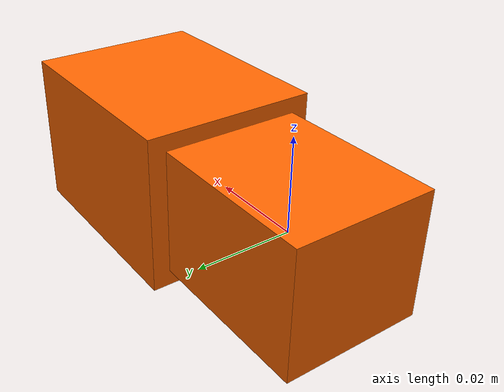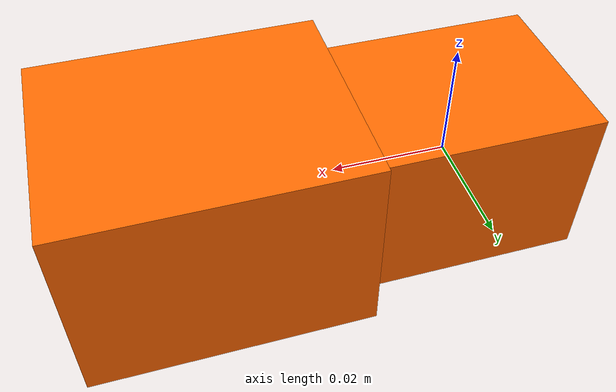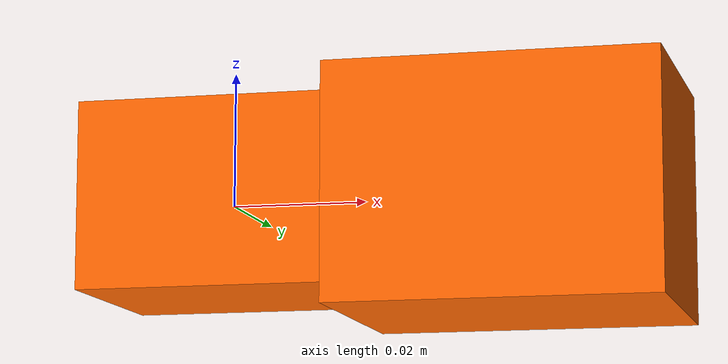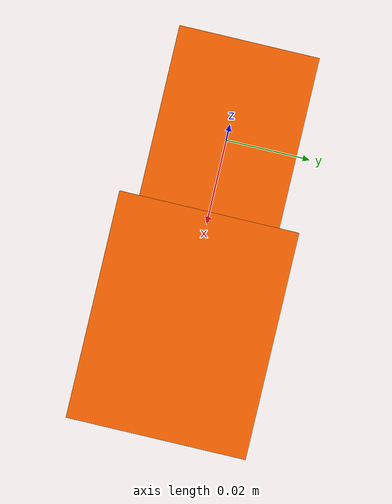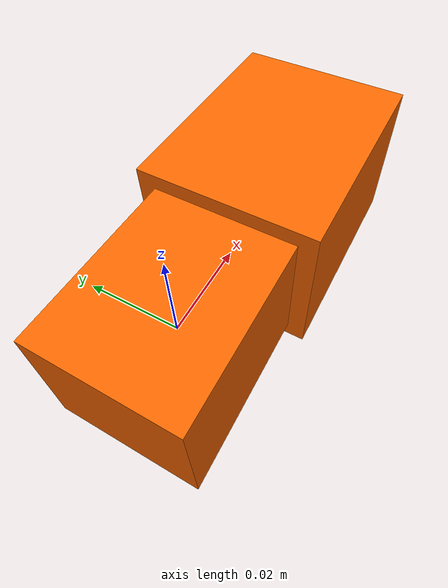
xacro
<?xml version="1.0"?>
<robot xmlns:xacro="http://www.ros.org/wiki/xacro">

  <xacro:macro name="emerge_module" params="name xyz:='0 0 0' rpy:='0 0 0'">
    <link name="${name}_connector_link">
      <inertial>
        <origin xyz="0 0 0" />
        <mass value="0.06" />
        <inertia ixx="8.43e-06" ixy="0" ixz="0" iyy="1.12e-05" iyz="0" izz="1.21e-05" />
      </inertial>

      <visual>
        <origin xyz="0 0 0" rpy="0 0 0" />
        <geometry>
          <box size="0.0385 0.0305 0.0275" />
        </geometry>
        <material name="orange">
          <color rgba="1 0.4 0 1" />
        </material>
      </visual>

      <collision>
        <origin xyz="0 0 0" />
        <geometry>
          <box size="0.0385 0.0305 0.0275" />
        </geometry>
      </collision>
    </link>

    <link name="${name}_motor_link">
      <inertial>
        <origin xyz="0 0 0" />
        <mass value="0.06" />
        <inertia ixx="1.32e-05" ixy="0" ixz="0" iyy="1.75e-05" iyz="0" izz="1.89e-05" />
      </inertial>

      <visual>
        <origin xyz="0 0 0" />
        <geometry>
          <box size="0.048125 0.038125 0.034375" />
        </geometry>
        <material name="orange">
          <color rgba="1 0.4 0 1" />
        </material>
      </visual>

      <collision>
        <origin xyz="0 0 0" />
        <geometry>
          <box size="0.048125 0.038125 0.034375" />
        </geometry>
      </collision>
    </link>

    <joint name="${name}_joint" type="revolute">
      <parent link="${name}_connector_link" />
      <child link="${name}_motor_link" />
      <!-- Offset increased to remove collision overlap -->
      <origin xyz="0.042 0 0" rpy="0 0 0" />
      <axis xyz="0 1 0" />
      <limit effort="0.5" lower="-0.6" upper="0.6" velocity="2.0" />
      <dynamics damping="0.03" />
    </joint>
  </xacro:macro>
  <xacro:emerge_module name="emerge_plus"/>
</robot>
